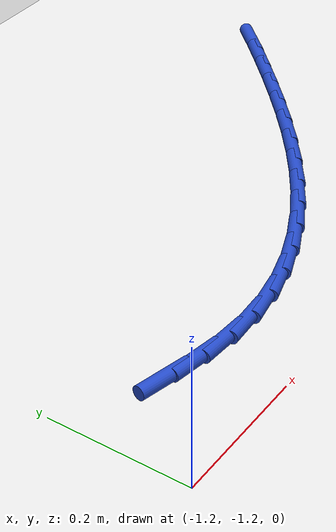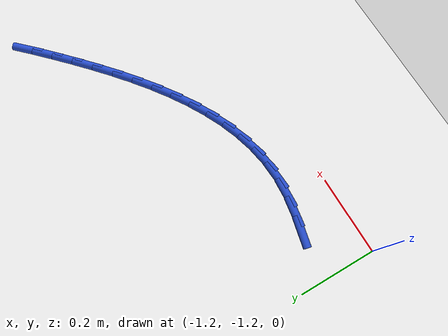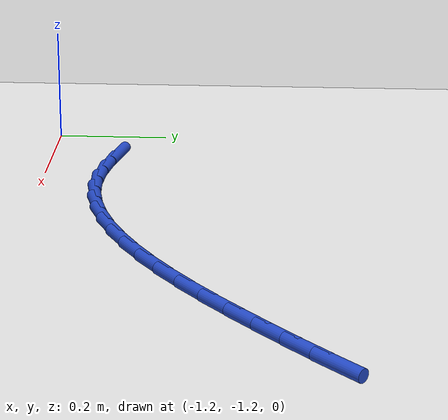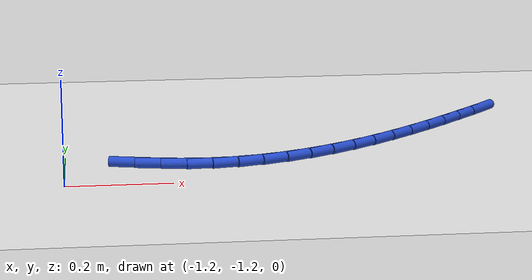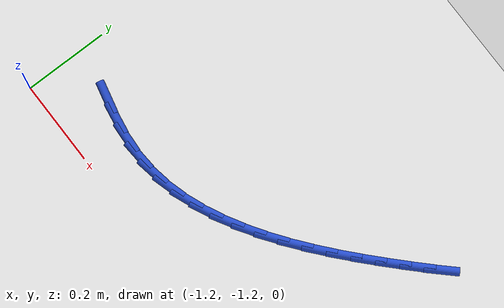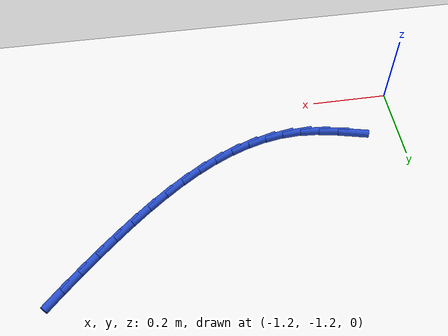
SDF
<sdf version="1.6">
 <world name="default">
  <model name="ground_plane">
   <static>1</static>
   <link name="link">
    <collision name="collision">
     <geometry><plane><normal>0 0 1</normal><size>100 100</size></plane></geometry>
     <surface><friction><ode><mu>100</mu><mu2>50</mu2></ode></friction></surface>
    </collision>
    <visual name="visual">
     <cast_shadows>0</cast_shadows>
     <geometry><plane><normal>0 0 1</normal><size>100 100</size></plane></geometry>
     <material>
      <script><uri>file://media/materials/scripts/gazebo.material</uri><name>Gazebo/WhiteGlow</name></script>
     </material>
    </visual>
   </link>
  </model>
  <model name="line">
   <link name="link_107">
    <pose>-1.0773644802346238 -1.0780352048530701 0.01 0 1.57 -0.2325243219682695</pose>
    <collision name="collision">
     <geometry><cylinder><radius>0.01</radius><length>0.08</length></cylinder></geometry>
    </collision>
    <visual name="visual">
     <material>
      <script><name>Gazebo/Blue</name><uri>file://media/materials/scripts/gazebo.material</uri></script>
     </material>
     <geometry><cylinder><radius>0.01</radius><length>0.08</length></cylinder></geometry>
    </visual>
   </link>
   <link name="link_108">
    <pose>-1.0280905345841311 -1.089703652419979 0.01 0 1.57 -0.16210063345125594</pose>
    <collision name="collision">
     <geometry><cylinder><radius>0.01</radius><length>0.08</length></cylinder></geometry>
    </collision>
    <visual name="visual">
     <material>
      <script><name>Gazebo/Blue</name><uri>file://media/materials/scripts/gazebo.material</uri></script>
     </material>
     <geometry><cylinder><radius>0.01</radius><length>0.08</length></cylinder></geometry>
    </visual>
   </link>
   <link name="link_109">
    <pose>-0.9791815788812439 -1.0977020046941268 0.01 0 1.57 -0.06067439679648511</pose>
    <collision name="collision">
     <geometry><cylinder><radius>0.01</radius><length>0.08</length></cylinder></geometry>
    </collision>
    <visual name="visual">
     <material>
      <script><name>Gazebo/Blue</name><uri>file://media/materials/scripts/gazebo.material</uri></script>
     </material>
     <geometry><cylinder><radius>0.01</radius><length>0.08</length></cylinder></geometry>
    </visual>
   </link>
   <link name="link_110">
    <pose>-0.9306691272586807 -1.1006490857654787 0.01 0 1.57 0.06248577733277816</pose>
    <collision name="collision">
     <geometry><cylinder><radius>0.01</radius><length>0.08</length></cylinder></geometry>
    </collision>
    <visual name="visual">
     <material>
      <script><name>Gazebo/Blue</name><uri>file://media/materials/scripts/gazebo.material</uri></script>
     </material>
     <geometry><cylinder><radius>0.01</radius><length>0.08</length></cylinder></geometry>
    </visual>
   </link>
   <link name="link_111">
    <pose>-0.8825898738708322 -1.0976409000985412 0.01 0 1.57 0.1798639746921397</pose>
    <collision name="collision">
     <geometry><cylinder><radius>0.01</radius><length>0.08</length></cylinder></geometry>
    </collision>
    <visual name="visual">
     <material>
      <script><name>Gazebo/Blue</name><uri>file://media/materials/scripts/gazebo.material</uri></script>
     </material>
     <geometry><cylinder><radius>0.01</radius><length>0.08</length></cylinder></geometry>
    </visual>
   </link>
   <link name="link_112">
    <pose>-0.8349936814339044 -1.0889865318803709 0.01 0 1.57 0.28526931420433227</pose>
    <collision name="collision">
     <geometry><cylinder><radius>0.01</radius><length>0.08</length></cylinder></geometry>
    </collision>
    <visual name="visual">
     <material>
      <script><name>Gazebo/Blue</name><uri>file://media/materials/scripts/gazebo.material</uri></script>
     </material>
     <geometry><cylinder><radius>0.01</radius><length>0.08</length></cylinder></geometry>
    </visual>
   </link>
   <link name="link_113">
    <pose>-0.7879324743130989 -1.0751849831211133 0.01 0 1.57 0.3779069252488681</pose>
    <collision name="collision">
     <geometry><cylinder><radius>0.01</radius><length>0.08</length></cylinder></geometry>
    </collision>
    <visual name="visual">
     <material>
      <script><name>Gazebo/Blue</name><uri>file://media/materials/scripts/gazebo.material</uri></script>
     </material>
     <geometry><cylinder><radius>0.01</radius><length>0.08</length></cylinder></geometry>
    </visual>
   </link>
   <link name="link_114">
    <pose>-0.7414581768736196 -1.0567352558309147 0.01 0 1.57 0.45806740336796486</pose>
    <collision name="collision">
     <geometry><cylinder><radius>0.01</radius><length>0.08</length></cylinder></geometry>
    </collision>
    <visual name="visual">
     <material>
      <script><name>Gazebo/Blue</name><uri>file://media/materials/scripts/gazebo.material</uri></script>
     </material>
     <geometry><cylinder><radius>0.01</radius><length>0.08</length></cylinder></geometry>
    </visual>
   </link>
   <link name="link_115">
    <pose>-0.6956227134806678 -1.0341363520199207 0.01 0 1.57 0.5266629769626746</pose>
    <collision name="collision">
     <geometry><cylinder><radius>0.01</radius><length>0.08</length></cylinder></geometry>
    </collision>
    <visual name="visual">
     <material>
      <script><name>Gazebo/Blue</name><uri>file://media/materials/scripts/gazebo.material</uri></script>
     </material>
     <geometry><cylinder><radius>0.01</radius><length>0.08</length></cylinder></geometry>
    </visual>
   </link>
   <link name="link_116">
    <pose>-0.650478008499446 -1.0078872736982765 0.01 0 1.57 0.5848605758434741</pose>
    <collision name="collision">
     <geometry><cylinder><radius>0.01</radius><length>0.08</length></cylinder></geometry>
    </collision>
    <visual name="visual">
     <material>
      <script><name>Gazebo/Blue</name><uri>file://media/materials/scripts/gazebo.material</uri></script>
     </material>
     <geometry><cylinder><radius>0.01</radius><length>0.08</length></cylinder></geometry>
    </visual>
   </link>
   <link name="link_117">
    <pose>-0.6060759862951557 -0.9784870228761275 0.01 0 1.57 0.6338462492096082</pose>
    <collision name="collision">
     <geometry><cylinder><radius>0.01</radius><length>0.08</length></cylinder></geometry>
    </collision>
    <visual name="visual">
     <material>
      <script><name>Gazebo/Blue</name><uri>file://media/materials/scripts/gazebo.material</uri></script>
     </material>
     <geometry><cylinder><radius>0.01</radius><length>0.08</length></cylinder></geometry>
    </visual>
   </link>
   <link name="link_118">
    <pose>-0.5624685712330006 -0.9464346015636202 0.01 0 1.57 0.6746964925218033</pose>
    <collision name="collision">
     <geometry><cylinder><radius>0.01</radius><length>0.08</length></cylinder></geometry>
    </collision>
    <visual name="visual">
     <material>
      <script><name>Gazebo/Blue</name><uri>file://media/materials/scripts/gazebo.material</uri></script>
     </material>
     <geometry><cylinder><radius>0.01</radius><length>0.08</length></cylinder></geometry>
    </visual>
   </link>
   <link name="link_119">
    <pose>-0.5197076876781822 -0.9122290117708997 0.01 0 1.57 0.7083187679494709</pose>
    <collision name="collision">
     <geometry><cylinder><radius>0.01</radius><length>0.08</length></cylinder></geometry>
    </collision>
    <visual name="visual">
     <material>
      <script><name>Gazebo/Blue</name><uri>file://media/materials/scripts/gazebo.material</uri></script>
     </material>
     <geometry><cylinder><radius>0.01</radius><length>0.08</length></cylinder></geometry>
    </visual>
   </link>
   <link name="link_120">
    <pose>-0.47784525999590316 -0.8763692555081117 0.01 0 1.57 0.7354298048581921</pose>
    <collision name="collision">
     <geometry><cylinder><radius>0.01</radius><length>0.08</length></cylinder></geometry>
    </collision>
    <visual name="visual">
     <material>
      <script><name>Gazebo/Blue</name><uri>file://media/materials/scripts/gazebo.material</uri></script>
     </material>
     <geometry><cylinder><radius>0.01</radius><length>0.08</length></cylinder></geometry>
    </visual>
   </link>
   <link name="link_121">
    <pose>-0.4369332125513653 -0.839354334785402 0.01 0 1.57 0.7565503314345963</pose>
    <collision name="collision">
     <geometry><cylinder><radius>0.01</radius><length>0.08</length></cylinder></geometry>
    </collision>
    <visual name="visual">
     <material>
      <script><name>Gazebo/Blue</name><uri>file://media/materials/scripts/gazebo.material</uri></script>
     </material>
     <geometry><cylinder><radius>0.01</radius><length>0.08</length></cylinder></geometry>
    </visual>
   </link>
   <link name="link_122">
    <pose>-0.3970234697097708 -0.8016832516129155 0.01 0 1.57 0.7721967657678278</pose>
    <collision name="collision">
     <geometry><cylinder><radius>0.01</radius><length>0.08</length></cylinder></geometry>
    </collision>
    <visual name="visual">
     <material>
      <script><name>Gazebo/Blue</name><uri>file://media/materials/scripts/gazebo.material</uri></script>
     </material>
     <geometry><cylinder><radius>0.01</radius><length>0.08</length></cylinder></geometry>
    </visual>
   </link>
   <link name="link_123">
    <pose>-0.35817033528078174 -0.7638426406332699 0.01 0 1.57 0.7875545107287993</pose>
    <collision name="collision">
     <geometry><cylinder><radius>0.01</radius><length>0.08</length></cylinder></geometry>
    </collision>
    <visual name="visual">
     <material>
      <script><name>Gazebo/Blue</name><uri>file://media/materials/scripts/gazebo.material</uri></script>
     </material>
     <geometry><cylinder><radius>0.01</radius><length>0.08</length></cylinder></geometry>
    </visual>
   </link>
   <link name="link_124">
    <pose>-0.32048968134227096 -0.7259991301118547 0.01 0 1.57 0.8081819305597052</pose>
    <collision name="collision">
     <geometry><cylinder><radius>0.01</radius><length>0.08</length></cylinder></geometry>
    </collision>
    <visual name="visual">
     <material>
      <script><name>Gazebo/Blue</name><uri>file://media/materials/scripts/gazebo.material</uri></script>
     </material>
     <geometry><cylinder><radius>0.01</radius><length>0.08</length></cylinder></geometry>
    </visual>
   </link>
  </model>
 </world>
</sdf>
